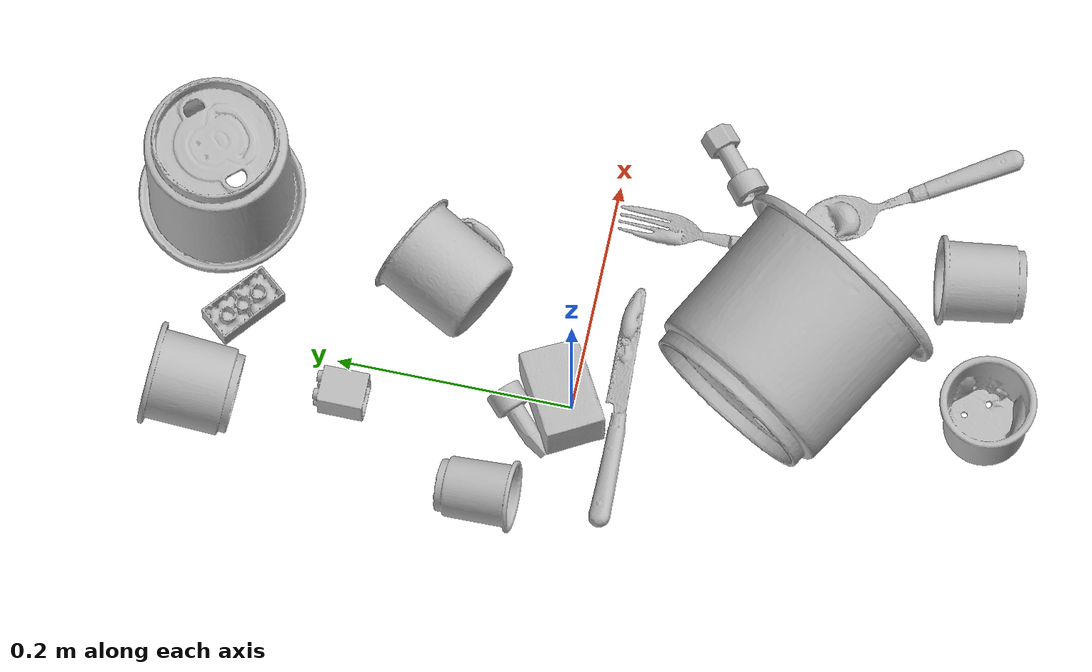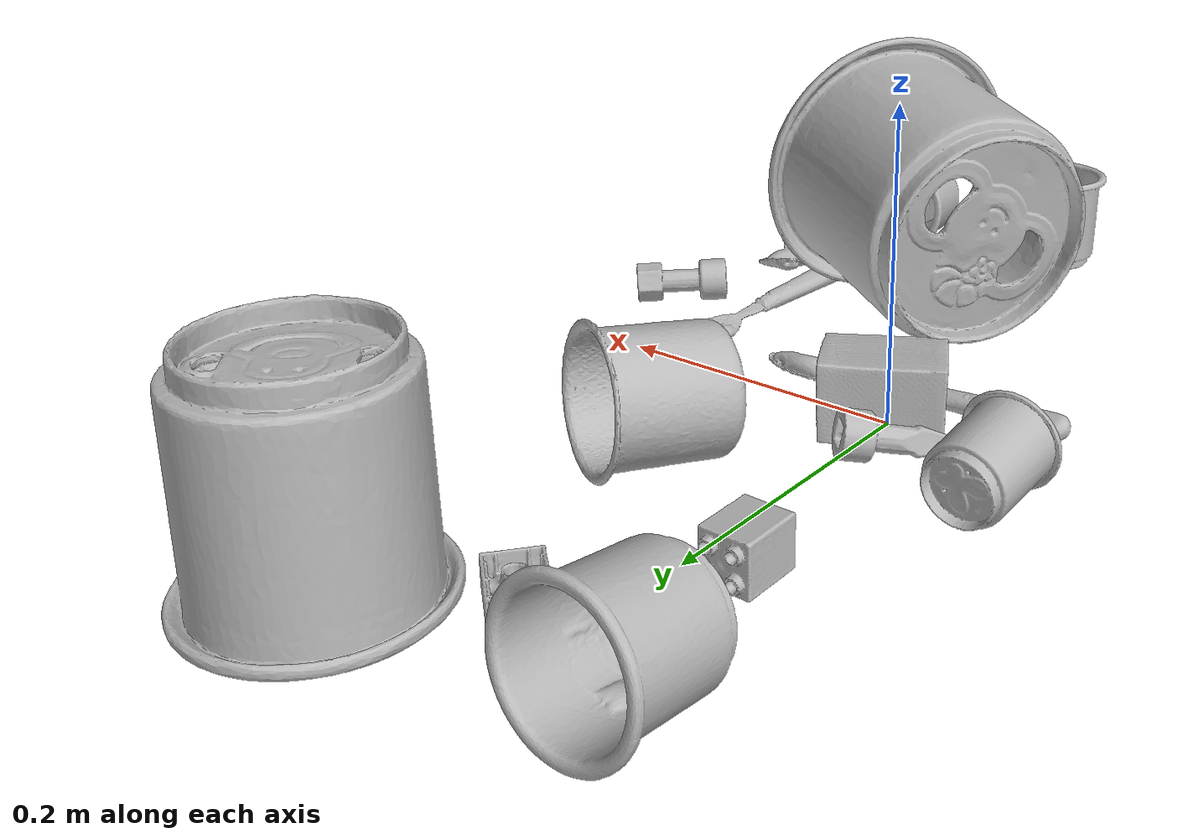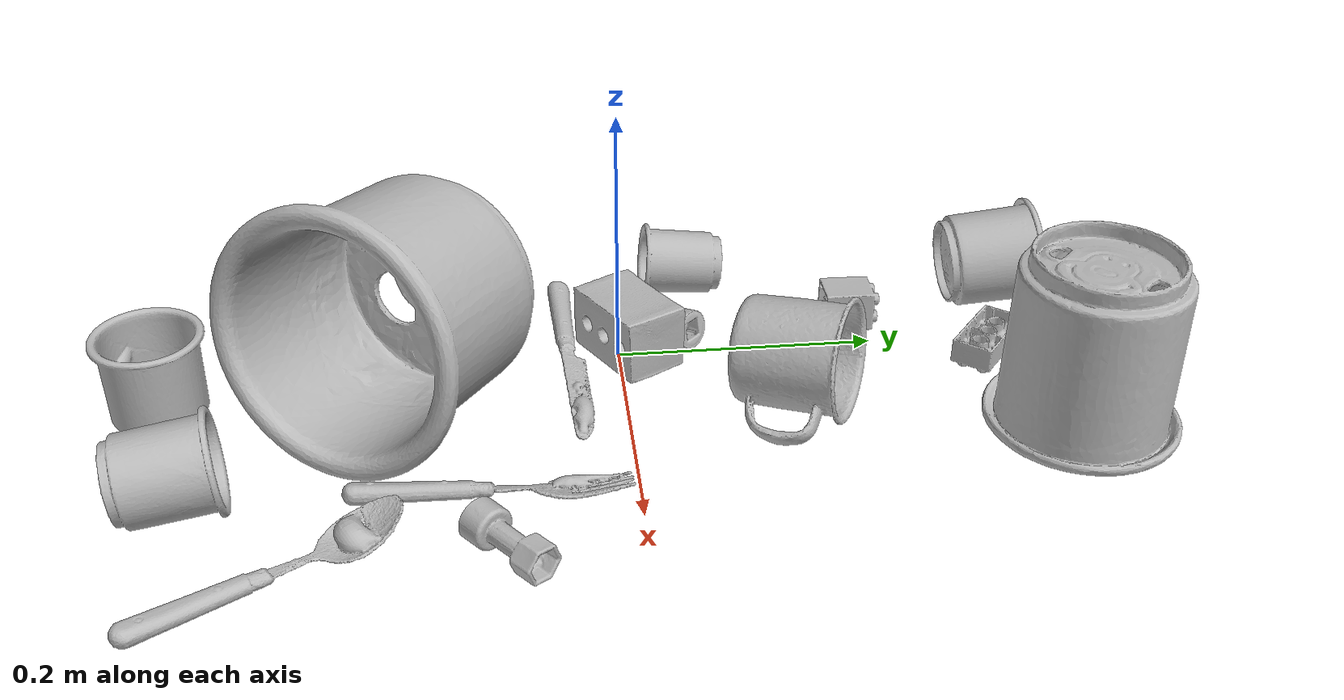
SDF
<sdf version="1.4">
  <world name="default">
    <light name="light1" type="point">
      <pose>0 0 1 0 0 0</pose>
      <diffuse>3 3 3 1</diffuse>
      <specular>3 3 3 1</specular>
    </light>
    <light name="light2" type="point">
      <pose>0 0.5 2 0 0 0</pose>
      <diffuse>1 1 1 1</diffuse>
      <specular>1 1 1 1</specular>
    </light>
    <light name="light3" type="point">
      <pose>0 0.5 2 0 0 0</pose>
      <diffuse>3 3 3 1</diffuse>
      <specular>3 3 3 1</specular>
    </light>
    <scene>
      <ambient>0.7 0.7 0.7</ambient>
    </scene>
    <model name="cup1">
      <link name="link_cup1">
        <collision name="default">
          <geometry>
            <mesh>
              <uri>model://e_cups/collision_meshes/collision.obj</uri>
              <scale>1.0 1.0 1.0</scale>
            </mesh>
          </geometry>
          <surface>
            <friction>
              <ode>
                <mu>0.5</mu>
                <mu2>0.5</mu2>
              </ode>
            </friction>
          <contact>
        <ode>
            <max_vel>0</max_vel>
            <min_depth>0.0001</min_depth>
            <kp>1e8</kp>
        </ode>
    </contact></surface>
        </collision>
        <visual name="default">
          <geometry>
            <mesh>
              <uri>model://e_cups/visual_meshes/visual.dae</uri>
              <scale>1.0 1.0 1.0</scale>
            </mesh>
          </geometry>
        </visual>
        <inertial>
          <mass>0.07679437845945358</mass>
          <pose>0.001135574304498732 0.002879783743992448 -0.0038829718250781298 0.6952411595659588 0.08767733322521654 -0.5235244631248706</pose>
          <inertia>
            <ixx>6.771342e-05</ixx>
            <iyy>7.077022e-05</iyy>
            <izz>6.4741864e-05</izz>
            <ixy>0</ixy>
            <ixz>0</ixz>
            <iyz>0</iyz>
          </inertia>
        </inertial>
      </link>
      <pose>0.16735583543777466 -0.31320834159851074 0.034920670092105865 -1.4857516642168478 0.25665922087497184 0.19449388154673103</pose>
    </model>
    <model name="silverware1">
      <link name="link_silverware1">
        <collision name="default">
          <geometry>
            <mesh>
              <uri>model://spoon/collision_meshes/collision.obj</uri>
              <scale>1.0 1.0 1.0</scale>
            </mesh>
          </geometry>
          <surface>
            <friction>
              <ode>
                <mu>0.5</mu>
                <mu2>0.5</mu2>
              </ode>
            </friction>
          <contact>
        <ode>
            <max_vel>0</max_vel>
            <min_depth>0.0001</min_depth>
            <kp>1e8</kp>
        </ode>
    </contact></surface>
        </collision>
        <visual name="default">
          <geometry>
            <mesh>
              <uri>model://spoon/visual_meshes/visual.dae</uri>
              <scale>1.0 1.0 1.0</scale>
            </mesh>
          </geometry>
        </visual>
        <inertial>
          <mass>0.015083584003150463</mass>
          <pose>-0.005526313092559576 -0.001603418029844761 -0.000727165665011853 0.035216710638299134 -0.03906584880684835 0.006150613179751253</pose>
          <inertia>
            <ixx>8.389734e-07</ixx>
            <iyy>5.739254e-05</iyy>
            <izz>5.7806283e-05</izz>
            <ixy>0</ixy>
            <ixz>0</ixz>
            <iyz>0</iyz>
          </inertia>
        </inertial>
      </link>
      <pose>0.24104386568069458 -0.24322855472564697 0.008385264314711094 0.0067291971883832805 0.02689300035158969 2.1185735593037562</pose>
    </model>
    <model name="cup2">
      <link name="link_cup2">
        <collision name="default">
          <geometry>
            <mesh>
              <uri>model://g_cups/collision_meshes/collision.obj</uri>
              <scale>1.0 1.0 1.0</scale>
            </mesh>
          </geometry>
          <surface>
            <friction>
              <ode>
                <mu>0.5</mu>
                <mu2>0.5</mu2>
              </ode>
            </friction>
          <contact>
        <ode>
            <max_vel>0</max_vel>
            <min_depth>0.0001</min_depth>
            <kp>1e8</kp>
        </ode>
    </contact></surface>
        </collision>
        <visual name="default">
          <geometry>
            <mesh>
              <uri>model://g_cups/visual_meshes/visual.dae</uri>
              <scale>1.0 1.0 1.0</scale>
            </mesh>
          </geometry>
        </visual>
        <inertial>
          <mass>0.04187431186437607</mass>
          <pose>-0.0007946277037262917 -4.2064348235726357e-05 -0.0021329382434487343 -0.21382305588888167 -0.31410659578681893 0.31120215507532384</pose>
          <inertia>
            <ixx>4.8876722e-05</ixx>
            <iyy>4.871046e-05</iyy>
            <izz>5.0627856e-05</izz>
            <ixy>0</ixy>
            <ixz>0</ixz>
            <iyz>0</iyz>
          </inertia>
        </inertial>
      </link>
      <pose>-0.05689501389861107 0.30925390124320984 0.04000824689865112 -1.449318032895144 0.4339809368073141 0.02358641864746511</pose>
    </model>
    <model name="silverware2">
      <link name="link_silverware2">
        <collision name="default">
          <geometry>
            <mesh>
              <uri>model://fork/collision_meshes/collision.obj</uri>
              <scale>1.0 1.0 1.0</scale>
            </mesh>
          </geometry>
          <surface>
            <friction>
              <ode>
                <mu>0.5</mu>
                <mu2>0.5</mu2>
              </ode>
            </friction>
          <contact>
        <ode>
            <max_vel>0</max_vel>
            <min_depth>0.0001</min_depth>
            <kp>1e8</kp>
        </ode>
    </contact></surface>
        </collision>
        <visual name="default">
          <geometry>
            <mesh>
              <uri>model://fork/visual_meshes/visual.dae</uri>
              <scale>1.0 1.0 1.0</scale>
            </mesh>
          </geometry>
        </visual>
        <inertial>
          <mass>0.025364622473716736</mass>
          <pose>-0.029570050537586212 0.00046588227269239724 0.00032188615296036005 -0.013551666838441594 -0.010977837199147297 0.014453899745261501</pose>
          <inertia>
            <ixx>8.8917335e-07</ixx>
            <iyy>6.621973e-05</iyy>
            <izz>6.661743e-05</izz>
            <ixy>0</ixy>
            <ixz>0</ixz>
            <iyz>0</iyz>
          </inertia>
        </inertial>
      </link>
      <pose>0.16976533830165863 -0.10256317257881165 0.005728583317250013 -0.18637136123395748 0.024496166965018273 1.5342482490384788</pose>
    </model>
    <model name="cup3">
      <link name="link_cup3">
        <collision name="default">
          <geometry>
            <mesh>
              <uri>model://f_cups/collision_meshes/collision.obj</uri>
              <scale>1.0 1.0 1.0</scale>
            </mesh>
          </geometry>
          <surface>
            <friction>
              <ode>
                <mu>0.5</mu>
                <mu2>0.5</mu2>
              </ode>
            </friction>
          <contact>
        <ode>
            <max_vel>0</max_vel>
            <min_depth>0.0001</min_depth>
            <kp>1e8</kp>
        </ode>
    </contact></surface>
        </collision>
        <visual name="default">
          <geometry>
            <mesh>
              <uri>model://f_cups/visual_meshes/visual.dae</uri>
              <scale>1.0 1.0 1.0</scale>
            </mesh>
          </geometry>
        </visual>
        <inertial>
          <mass>0.08338716626167297</mass>
          <pose>-0.0031714679207652807 -0.0006240069633349776 -0.003655536798760295 0.7862348245142414 -0.2607950949044878 -0.18237232658982702</pose>
          <inertia>
            <ixx>7.838616e-05</ixx>
            <iyy>8.222797e-05</iyy>
            <izz>8.560161e-05</izz>
            <ixy>0</ixy>
            <ixz>0</ixz>
            <iyz>0</iyz>
          </inertia>
        </inertial>
      </link>
      <pose>0.05297694727778435 -0.33966419100761414 0.03630600497126579 -4.025678121684203e-08 -4.1394802687082816e-08 1.5429230706414439</pose>
    </model>
    <model name="silverware3">
      <link name="link_silverware3">
        <collision name="default">
          <geometry>
            <mesh>
              <uri>model://knife/collision_meshes/collision.obj</uri>
              <scale>1.0 1.0 1.0</scale>
            </mesh>
          </geometry>
          <surface>
            <friction>
              <ode>
                <mu>0.5</mu>
                <mu2>0.5</mu2>
              </ode>
            </friction>
          <contact>
        <ode>
            <max_vel>0</max_vel>
            <min_depth>0.0001</min_depth>
            <kp>1e8</kp>
        </ode>
    </contact></surface>
        </collision>
        <visual name="default">
          <geometry>
            <mesh>
              <uri>model://knife/visual_meshes/visual.dae</uri>
              <scale>1.0 1.0 1.0</scale>
            </mesh>
          </geometry>
        </visual>
        <inertial>
          <mass>0.015509607270359993</mass>
          <pose>-0.02378525398671627 0.0015275129117071629 5.0620248657651246e-05 0.07305981518176793 0.01724841487141605 -0.0074098192082968535</pose>
          <inertia>
            <ixx>4.4022548e-07</ixx>
            <iyy>5.95854e-05</iyy>
            <izz>5.9727172e-05</izz>
            <ixy>0</ixy>
            <ixz>0</ixz>
            <iyz>0</iyz>
          </inertia>
        </inertial>
      </link>
      <pose>0.007408913224935532 -0.03697030246257782 0.00581071013584733 2.889354289607533 0.025914649046175593 0.043511747868583694</pose>
    </model>
    <model name="cup4">
      <link name="link_cup4">
        <collision name="default">
          <geometry>
            <mesh>
              <uri>model://d_cups/collision_meshes/collision.obj</uri>
              <scale>2.0 2.0 2.0</scale>
            </mesh>
          </geometry>
          <surface>
            <friction>
              <ode>
                <mu>0.5</mu>
                <mu2>0.5</mu2>
              </ode>
            </friction>
          <contact>
        <ode>
            <max_vel>0</max_vel>
            <min_depth>0.0001</min_depth>
            <kp>1e8</kp>
        </ode>
    </contact></surface>
        </collision>
        <visual name="default">
          <geometry>
            <mesh>
              <uri>model://d_cups/visual_meshes/visual.dae</uri>
              <scale>2.0 2.0 2.0</scale>
            </mesh>
          </geometry>
        </visual>
        <inertial>
          <mass>0.5481204390525818</mass>
          <pose>0.001613611588254571 0.0038234798703342676 -0.0045333015732467175 0.2401214667218237 -0.2470996070340832 0.5942599316130982</pose>
          <inertia>
            <ixx>0.001835623</ixx>
            <iyy>0.0018303102</iyy>
            <izz>0.0016615508</izz>
            <ixy>0</ixy>
            <ixz>0</ixz>
            <iyz>0</iyz>
          </inertia>
        </inertial>
      </link>
      <pose>0.12370751053094864 0.3273271322250366 0.06897801160812378 3.141592545118463 1.831391345730927e-08 1.3224008531442173</pose>
    </model>
    <model name="cup41">
      <link name="link_cup41">
        <collision name="default">
          <geometry>
            <mesh>
              <uri>model://b_cups/collision_meshes/collision.obj</uri>
              <scale>1.0 1.0 1.0</scale>
            </mesh>
          </geometry>
          <surface>
            <friction>
              <ode>
                <mu>0.5</mu>
                <mu2>0.5</mu2>
              </ode>
            </friction>
          <contact>
        <ode>
            <max_vel>0</max_vel>
            <min_depth>0.0001</min_depth>
            <kp>1e8</kp>
        </ode>
    </contact></surface>
        </collision>
        <visual name="default">
          <geometry>
            <mesh>
              <uri>model://b_cups/visual_meshes/visual.dae</uri>
              <scale>1.0 1.0 1.0</scale>
            </mesh>
          </geometry>
        </visual>
        <inertial>
          <mass>0.04462150111794472</mass>
          <pose>0.0005182005697861314 0.0018058601999655366 -0.0013381819007918239 0.11356336410280554 0.038725039404113405 -0.3456939711537357</pose>
          <inertia>
            <ixx>2.9207904e-05</ixx>
            <iyy>2.8653376e-05</iyy>
            <izz>2.45779e-05</izz>
            <ixy>0</ixy>
            <ixz>0</ixz>
            <iyz>0</iyz>
          </inertia>
        </inertial>
      </link>
      <pose>-0.09595546871423721 0.060142405331134796 0.027744639664888382 -1.4796577884542845 -0.04188003221090279 3.13803089081808</pose>
    </model>
    <model name="cup5">
      <link name="link_cup5">
        <collision name="default">
          <geometry>
            <mesh>
              <uri>model://i_cups/collision_meshes/collision.obj</uri>
              <scale>2.0 2.0 2.0</scale>
            </mesh>
          </geometry>
          <surface>
            <friction>
              <ode>
                <mu>0.5</mu>
                <mu2>0.5</mu2>
              </ode>
            </friction>
          <contact>
        <ode>
            <max_vel>0</max_vel>
            <min_depth>0.0001</min_depth>
            <kp>1e8</kp>
        </ode>
    </contact></surface>
        </collision>
        <visual name="default">
          <geometry>
            <mesh>
              <uri>model://i_cups/visual_meshes/visual.dae</uri>
              <scale>2.0 2.0 2.0</scale>
            </mesh>
          </geometry>
        </visual>
        <inertial>
          <mass>0.7183689475059509</mass>
          <pose>0.00022480347251985222 0.0003359461552463472 -0.0017158043337985873 -0.028983189607302198 -0.03987301698166741 -0.34590760218104494</pose>
          <inertia>
            <ixx>0.0039783698</ixx>
            <iyy>0.004013422</iyy>
            <izz>0.0044464725</izz>
            <ixy>0</ixy>
            <ixz>0</ixz>
            <iyz>0</iyz>
          </inertia>
        </inertial>
      </link>
      <pose>0.06630124151706696 -0.16685155034065247 0.08966125547885895 1.4356811167352295 -0.3496157898087054 1.0791253262291256</pose>
    </model>
    <model name="cup51">
      <link name="link_cup51">
        <collision name="default">
          <geometry>
            <mesh>
              <uri>model://mug/collision_meshes/collision.obj</uri>
              <scale>1.0 1.0 1.0</scale>
            </mesh>
          </geometry>
          <surface>
            <friction>
              <ode>
                <mu>0.5</mu>
                <mu2>0.5</mu2>
              </ode>
            </friction>
          <contact>
        <ode>
            <max_vel>0</max_vel>
            <min_depth>0.0001</min_depth>
            <kp>1e8</kp>
        </ode>
    </contact></surface>
        </collision>
        <visual name="default">
          <geometry>
            <mesh>
              <uri>model://mug/visual_meshes/visual.dae</uri>
              <scale>1.0 1.0 1.0</scale>
            </mesh>
          </geometry>
        </visual>
        <inertial>
          <mass>0.1239403635263443</mass>
          <pose>0.009571672417223454 0.0008143244776874781 -0.01094733364880085 -0.12983126758676797 0.08737752450174939 0.055073145905888306</pose>
          <inertia>
            <ixx>0.0001231125</ixx>
            <iyy>0.00013750937</iyy>
            <izz>0.00015903146</izz>
            <ixy>0</ixy>
            <ixz>0</ixz>
            <iyz>0</iyz>
          </inertia>
        </inertial>
      </link>
      <pose>0.08977262675762177 0.11936361342668533 0.0366915687918663 1.4728034680083093 -0.5622061259647791 2.708128773641839</pose>
    </model>
    <model name="toy1">
      <link name="link_toy1">
        <collision name="default">
          <geometry>
            <mesh>
              <uri>model://e_toy_airplane/collision_meshes/collision.obj</uri>
              <scale>1.0 1.0 1.0</scale>
            </mesh>
          </geometry>
          <surface>
            <friction>
              <ode>
                <mu>0.5</mu>
                <mu2>0.5</mu2>
              </ode>
            </friction>
          <contact>
        <ode>
            <max_vel>0</max_vel>
            <min_depth>0.0001</min_depth>
            <kp>1e8</kp>
        </ode>
    </contact></surface>
        </collision>
        <visual name="default">
          <geometry>
            <mesh>
              <uri>model://e_toy_airplane/visual_meshes/visual.dae</uri>
              <scale>1.0 1.0 1.0</scale>
            </mesh>
          </geometry>
        </visual>
        <inertial>
          <mass>0.022831259295344353</mass>
          <pose>0.00011740475019905716 -2.2482799977296963e-05 -0.011187204159796238 0.005518483498250157 0.009228324176637706 0.15041338923558414</pose>
          <inertia>
            <ixx>6.9683606e-06</ixx>
            <iyy>6.897077e-06</iyy>
            <izz>2.0942666e-06</izz>
            <ixy>0</ixy>
            <ixz>0</ixz>
            <iyz>0</iyz>
          </inertia>
        </inertial>
      </link>
      <pose>-0.02527667209506035 0.03638456016778946 0.012364715337753296 1.7532689076067787 0.3754901257395635 -0.7379352704226375</pose>
    </model>
    <model name="toy2">
      <link name="link_toy2">
        <collision name="default">
          <geometry>
            <mesh>
              <uri>model://c_toy_airplane/collision_meshes/collision.obj</uri>
              <scale>1.0 1.0 1.0</scale>
            </mesh>
          </geometry>
          <surface>
            <friction>
              <ode>
                <mu>0.5</mu>
                <mu2>0.5</mu2>
              </ode>
            </friction>
          <contact>
        <ode>
            <max_vel>0</max_vel>
            <min_depth>0.0001</min_depth>
            <kp>1e8</kp>
        </ode>
    </contact></surface>
        </collision>
        <visual name="default">
          <geometry>
            <mesh>
              <uri>model://c_toy_airplane/visual_meshes/visual.dae</uri>
              <scale>1.0 1.0 1.0</scale>
            </mesh>
          </geometry>
        </visual>
        <inertial>
          <mass>0.014964861795306206</mass>
          <pose>-0.00023024252732284367 -4.4292315237726143e-07 -0.006080531980842352 -0.006193085961310731 -0.016797608001683555 0.7655123908688324</pose>
          <inertia>
            <ixx>6.871557e-06</ixx>
            <iyy>6.852165e-06</iyy>
            <izz>1.6133057e-06</izz>
            <ixy>0</ixy>
            <ixz>0</ixz>
            <iyz>0</iyz>
          </inertia>
        </inertial>
      </link>
      <pose>0.23531454801559448 -0.08975214511156082 0.014981091022491455 1.6255159477468792 -1.1800339410451608 2.2222262361976206</pose>
    </model>
    <model name="toy3">
      <link name="link_toy3">
        <collision name="default">
          <geometry>
            <mesh>
              <uri>model://c_lego_duplo/collision_meshes/collision.obj</uri>
              <scale>1.0 1.0 1.0</scale>
            </mesh>
          </geometry>
          <surface>
            <friction>
              <ode>
                <mu>0.5</mu>
                <mu2>0.5</mu2>
              </ode>
            </friction>
          <contact>
        <ode>
            <max_vel>0</max_vel>
            <min_depth>0.0001</min_depth>
            <kp>1e8</kp>
        </ode>
    </contact></surface>
        </collision>
        <visual name="default">
          <geometry>
            <mesh>
              <uri>model://c_lego_duplo/visual_meshes/visual.dae</uri>
              <scale>1.0 1.0 1.0</scale>
            </mesh>
          </geometry>
        </visual>
        <inertial>
          <mass>0.043811071664094925</mass>
          <pose>0.00031645968556404114 0.00019464633078314364 0.0010453150607645512 -0.011520790971684333 0.005900079198968262 0.031100329952374963</pose>
          <inertia>
            <ixx>1.685932e-05</ixx>
            <iyy>5.3854724e-06</iyy>
            <izz>1.970185e-05</izz>
            <ixy>0</ixy>
            <ixz>0</ixz>
            <iyz>0</iyz>
          </inertia>
        </inertial>
      </link>
      <pose>0.027128849178552628 0.28643321990966797 0.01191545557230711 -3.135453139449086 -0.0014073162208715327 0.9029922317257886</pose>
    </model>
    <model name="toy4">
      <link name="link_toy4">
        <collision name="default">
          <geometry>
            <mesh>
              <uri>model://foam_brick/collision_meshes/collision.obj</uri>
              <scale>1.0 1.0 1.0</scale>
            </mesh>
          </geometry>
          <surface>
            <friction>
              <ode>
                <mu>0.5</mu>
                <mu2>0.5</mu2>
              </ode>
            </friction>
          <contact>
        <ode>
            <max_vel>0</max_vel>
            <min_depth>0.0001</min_depth>
            <kp>1e8</kp>
        </ode>
    </contact></surface>
        </collision>
        <visual name="default">
          <geometry>
            <mesh>
              <uri>model://foam_brick/visual_meshes/visual.dae</uri>
              <scale>1.0 1.0 1.0</scale>
            </mesh>
          </geometry>
        </visual>
        <inertial>
          <mass>0.278400182723999</mass>
          <pose>-0.0002522472059354186 0.00034584358218126 -0.0002532101352699101 -0.2940175595239471 0.01727444673583901 -0.0007449899720057078</pose>
          <inertia>
            <ixx>0.00012161039</ixx>
            <iyy>0.00019415727</iyy>
            <izz>0.00019662478</izz>
            <ixy>0</ixy>
            <ixz>0</ixz>
            <iyz>0</iyz>
          </inertia>
        </inertial>
      </link>
      <pose>-0.00021747895516455173 0.008432428352534771 0.025910697877407074 1.5828200996842645 -0.0003755514154991521 0.5224651528316315</pose>
    </model>
    <model name="toy5">
      <link name="link_toy5">
        <collision name="default">
          <geometry>
            <mesh>
              <uri>model://f_lego_duplo/collision_meshes/collision.obj</uri>
              <scale>1.0 1.0 1.0</scale>
            </mesh>
          </geometry>
          <surface>
            <friction>
              <ode>
                <mu>0.5</mu>
                <mu2>0.5</mu2>
              </ode>
            </friction>
          <contact>
        <ode>
            <max_vel>0</max_vel>
            <min_depth>0.0001</min_depth>
            <kp>1e8</kp>
        </ode>
    </contact></surface>
        </collision>
        <visual name="default">
          <geometry>
            <mesh>
              <uri>model://f_lego_duplo/visual_meshes/visual.dae</uri>
              <scale>1.0 1.0 1.0</scale>
            </mesh>
          </geometry>
        </visual>
        <inertial>
          <mass>0.033785246312618256</mass>
          <pose>2.369392132095527e-05 0.00013393175322562456 0.0018837875686585903 0.029838526741840128 -0.014425189077584645 -0.6756601169838921</pose>
          <inertia>
            <ixx>7.139008e-06</ixx>
            <iyy>7.202609e-06</iyy>
            <izz>6.1969613e-06</izz>
            <ixy>0</ixy>
            <ixz>0</ixz>
            <iyz>0</iyz>
          </inertia>
        </inertial>
      </link>
      <pose>-0.03192426636815071 0.18949680030345917 0.01620696485042572 1.5790218651252974 9.418742410091264e-05 3.140640337074707</pose>
    </model>
  <physics type="ode">
      <max_contacts>50</max_contacts>
      <ode>
        <solver>
          <type>quick</type>
          <iters>75</iters>
        </solver>
        <constraints>
          <contact_max_correcting_vel>0</contact_max_correcting_vel>
          <contact_surface_layer>0</contact_surface_layer>
        </constraints>
      </ode>
    </physics></world>
</sdf>
